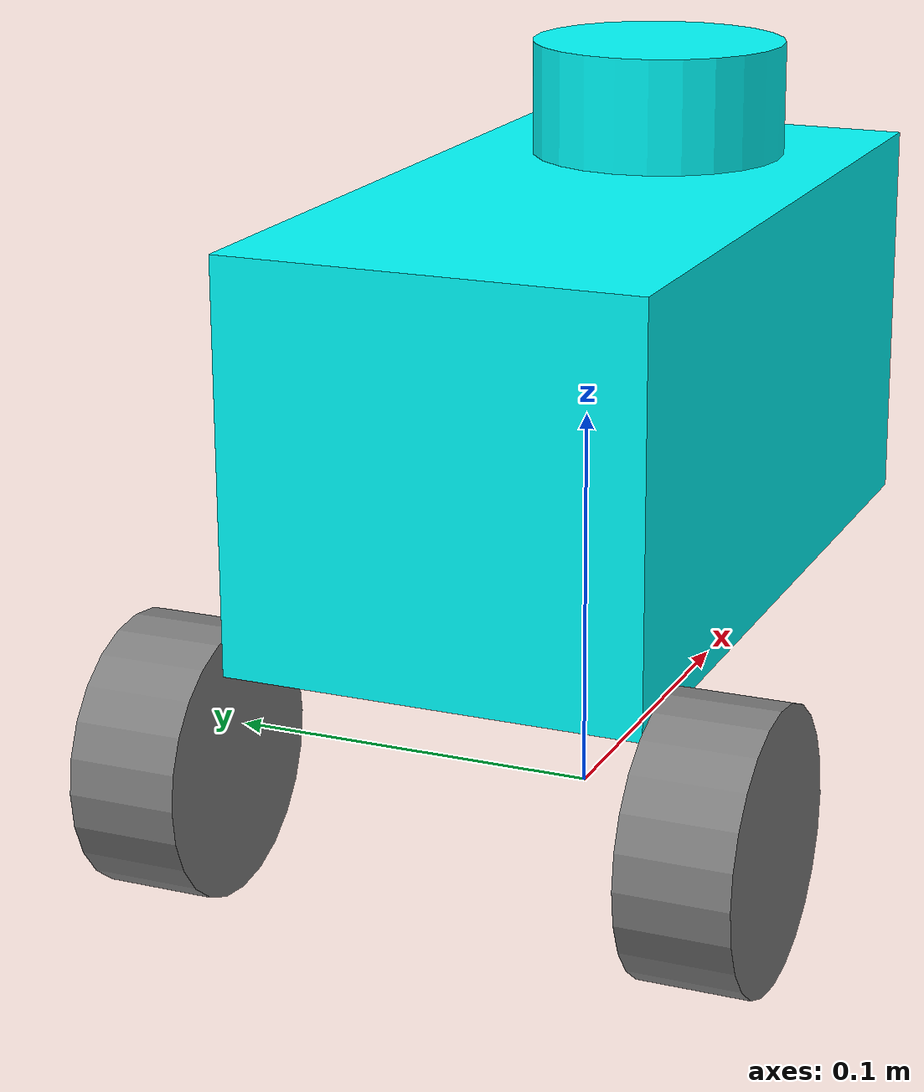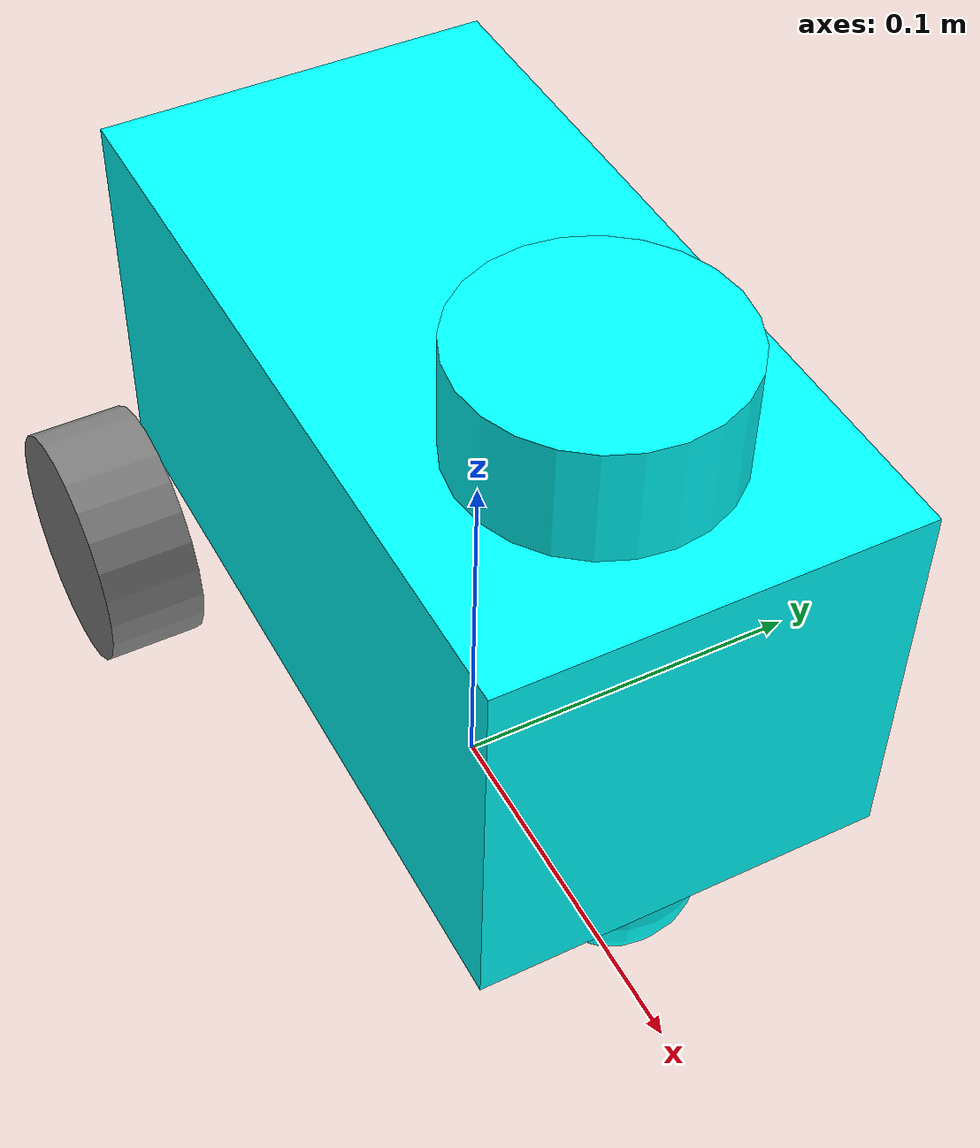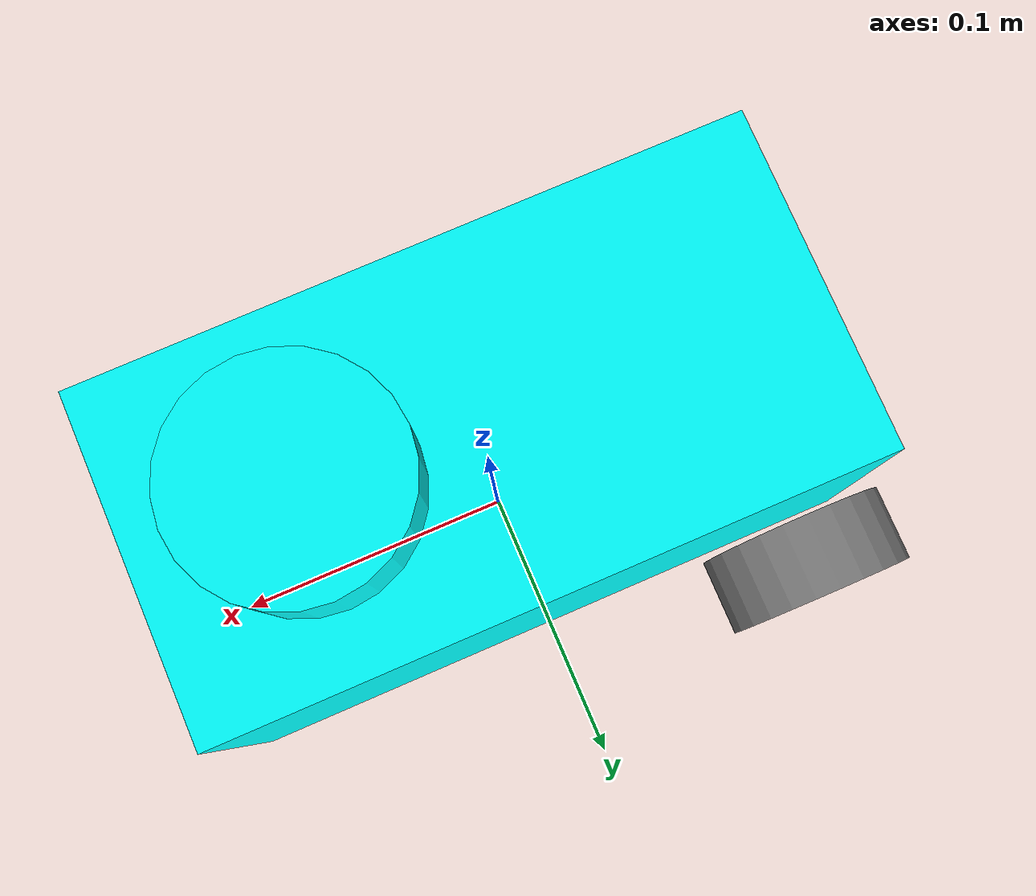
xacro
<?xml version="1.0"?>
<robot name="docbot" xmlns:xacro="http://ros.org/wiki/xacro">

    <xacro:include filename="$(find docbot_description)/urdf/inertial_macros.xacro"/>
    <xacro:include filename="$(find docbot_description)/urdf/docbot_ros2_control.xacro"/>
    <xacro:include filename="$(find docbot_description)/urdf/lidar.xacro"/>
    <xacro:include filename="$(find docbot_description)/urdf/properties.xacro"/>

    <link name="base_footprint"/>

    <link name="base_link">
        <visual>
            <origin xyz="0 0 ${base_height/2}"/>
            <geometry>
                <box size="${base_length} ${base_width} ${base_height}"/>
            </geometry>
            <material name="Cyan">
                <color rgba="0 1.0 1.0 1.0"/>
            </material>
        </visual>
        <collision>
            <origin xyz="0 0 ${base_height/2}"/>
            <geometry>
                <box size="${base_length} ${base_width} ${base_height}"/>
            </geometry>
        </collision>
        <xacro:inertial_box mass="1.0" x="${base_length}" y="${base_width}" z="${base_height}">
            <origin xyz="0 0 ${base_height/2}" rpy="0 0 0"/>
        </xacro:inertial_box>

    </link>

    <joint name="base_joint" type="fixed">
        <parent link="base_footprint"/>
        <child link="base_link"/>
        <origin xyz="0.0 0.0 ${(wheel_radius + wheel_zoff)}" rpy="0.0 0.0 0.0"/>

    </joint>

    <!-- Wheels -->
    <xacro:macro name="wheel" params="prefix x_reflect y_reflect">
        <link name="${prefix}_link">
            <visual>
                <origin xyz="0 0 0" rpy="${pi/2} 0 0"/>
                <geometry>
                    <cylinder radius="${wheel_radius}" length="${wheel_width}"/>
                </geometry>
                <material name="Gray">
                    <color rgba="0.5 0.5 0.5 1.0"/>
                </material>
            </visual>
            <collision>
                <origin xyz="0 0 0" rpy="${pi/2} 0 0"/>
                <geometry>
                    <cylinder radius="${wheel_radius}" length="${wheel_width}"/>
                </geometry>
            </collision>
            <xacro:inertial_cylinder mass="0.02" length="${wheel_width}" radius="${wheel_radius}">
                <origin xyz="0 0 0" rpy="${pi/2} 0 0"/>
            </xacro:inertial_cylinder>
        </link>

        <joint name="${prefix}_joint" type="continuous">
            <parent link="base_link"/>
            <child link="${prefix}_link"/>
            <origin xyz="${x_reflect * wheel_xoff}  ${y_reflect*(base_width/2 + wheel_ygap)} ${-wheel_zoff}" rpy="0 0 0"/>
            <axis xyz="0 1 0"/>
        </joint>
    </xacro:macro>

    <xacro:wheel prefix="wheel_left" x_reflect="-1" y_reflect="1" />
    <xacro:wheel prefix="wheel_right" x_reflect="-1" y_reflect="-1" />

    <!-- Caster -->
    <link name="front_caster">
        <visual>
            <geometry>
                <sphere radius="${caster_radius}"/>
            </geometry>
            <material name="Cyan">
                <color rgba="0 1.0 1.0 1.0"/>
            </material>
        </visual>
        <collision>
            <geometry>
                <sphere radius="${caster_radius}"/>
            </geometry>
        </collision>
        <xacro:inertial_sphere mass="0.5" radius="${caster_radius}">
            <origin xyz="0.0 0.0 0.0" rpy="0.0 0.0 0.0"/>
        </xacro:inertial_sphere>
    </link>

    <joint name="caster_joint" type="fixed">
        <parent link="base_link"/>
        <child link="front_caster"/>
        <origin xyz="${caster_xoff} 0.0 -0.02" rpy="0.0 0.0 0.0"/>
    </joint>
</robot>

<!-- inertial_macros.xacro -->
<robot xmlns:xacro="http://www.ros.org/wiki/xacro" >
    <!-- 일부 표준 관성 계산 지정 https://en.wikipedia.org/wiki/List_of_moments_of_inertia -->
    <!-- 이는 xacro의 수학적 기능을 활용합니다. -->
    <xacro:macro name="inertial_sphere" params="mass radius *origin">
        <inertial>
            <xacro:insert_block name="origin"/>
            <mass value="${mass}" />
            <inertia ixx="${(2/5) * mass * (radius*radius)}" ixy="0.0" ixz="0.0"
                    iyy="${(2/5) * mass * (radius*radius)}" iyz="0.0"
                    izz="${(2/5) * mass * (radius*radius)}" />
        </inertial>
    </xacro:macro>

    <xacro:macro name="inertial_box" params="mass x y z *origin">
        <inertial>
            <xacro:insert_block name="origin"/>
            <mass value="${mass}" />
            <inertia ixx="${(1/12) * mass * (y*y+z*z)}" ixy="0.0" ixz="0.0"
                    iyy="${(1/12) * mass * (x*x+z*z)}" iyz="0.0"
                    izz="${(1/12) * mass * (x*x+y*y)}" />
        </inertial>
    </xacro:macro>

    <xacro:macro name="inertial_cylinder" params="mass length radius *origin">
        <inertial>
            <xacro:insert_block name="origin"/>
            <mass value="${mass}" />
            <inertia ixx="${(1/12) * mass * (3*radius*radius + length*length)}" ixy="0.0" ixz="0.0"
                    iyy="${(1/12) * mass * (3*radius*radius + length*length)}" iyz="0.0"
                    izz="${(1/2) * mass * (radius*radius)}" />
        </inertial>
    </xacro:macro>
</robot>

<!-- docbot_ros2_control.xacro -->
<robot name="docbot" xmlns:xacro="http://ros.org/wiki/xacro">
    <xacro:include filename="$(find docbot_description)/urdf/properties.xacro"/>
    <ros2_control type="system" name="RobotSystem">
        <hardware>
            <plugin>docbot_firmware/DocbotInterface</plugin>
            <param name="port">/dev/ttyACM0</param>
            <param name="wheel_radius">${wheel_radius}</param>
        </hardware>
        <joint name="wheel_right_joint">
            <commad_interface name="velocity">
            <!-- 초당 -1~1 라디안으로 제한한다. -->
                <param name="min">-1</param>
                <param name="max">1</param>
            </commad_interface>

            <!-- 하드웨어의 상태를 읽어온다. -->
            <state_interface name="position"/>
            <state_interface name="velocity"/>
        </joint>

        <joint name="wheel_left_joint">
            <commad_interface name="velocity">
            <!-- 초당 -1~1 라디안으로 제한한다. -->
                <param name="min">-1</param>
                <param name="max">1</param>
            </commad_interface>

            <!-- 하드웨어의 상태를 읽어온다. -->
            <state_interface name="position"/>
            <state_interface name="velocity"/>
        </joint>

    </ros2_control>
</robot>

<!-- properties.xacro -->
<robot name="docbot" xmlns:xacro="http://ros.org/wiki/xacro">
    <xacro:property name="base_width" value= "0.103"/>
    <xacro:property name="base_length" value= "0.2"/>
    <xacro:property name="base_height" value="0.1"/>

    <xacro:property name="wheel_radius" value="0.033"/>
    <xacro:property name="wheel_width" value="0.0266"/>

    <xacro:property name="wheel_ygap" value="0.015"/>
    <xacro:property name="wheel_xoff" value="0.09"/>
    <xacro:property name="wheel_zoff" value="0.025"/>

    <xacro:property name="caster_xoff" value="0.07"/>
    <xacro:property name="caster_radius" value="0.022"/>

    <xacro:property name="lidar_height" value="0.0583"/>
    <xacro:property name="lidar_radius" value="0.0328"/>
</robot>

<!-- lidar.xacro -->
<robot xmlns:xacro="http://www.ros.org/wiki/xacro" name="robot_name">
    <xacro:include filename="$(find docbot_description)/urdf/properties.xacro"/>
    <link name="laser_frame">
        <visual>
            <geometry>
                <cylinder radius="${lidar_radius}" length="${lidar_height}"/>
            </geometry>
            <material name="Cyan"/>
            <origin xyz="0 0 0" rpy="0 0 0"/>
        </visual>
        <collision>
            <geometry>
                <cylinder radius="0.05" length="0.05"/>
            </geometry>
        </collision>
        <xacro:inertial_cylinder mass="0.1" length="${lidar_height}" radius="${lidar_radius}">
            <origin xyz="0 0 0" rpy="0 0 0"/>
        </xacro:inertial_cylinder>
    </link>

    <joint name="laser_joint" type="fixed">
        <parent link="base_link"/>
        <child link="laser_frame"/>
        <origin xyz="${base_length / 4} 0 ${base_height}" rpy="0 0 0"/>
    </joint>

</robot>
